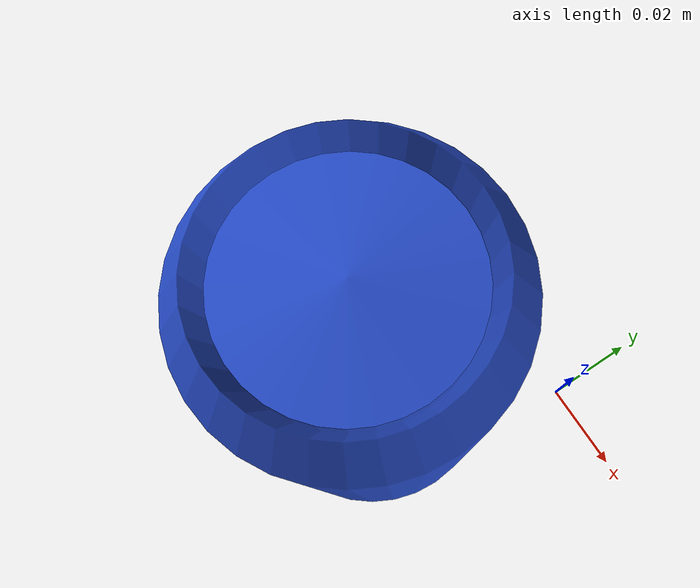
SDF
<?xml version="1.0" ?>
<sdf version='1.4'>
  <model name="coke">
      <static>0</static>
      <link name='link'>
        <inertial>
          <mass>0.25</mass>
          <inertia>
            <ixx>0.001</ixx>
            <ixy>0.000000</ixy>
            <ixz>0.000000</ixz>
            <iyy>0.001</iyy>
            <iyz>0.000000</iyz>
            <izz>0.001</izz>
          </inertia>
        </inertial>
        <collision name='collision'>
          <pose>-0.033 -0.033 -0.06 0 0 0</pose>
          <geometry>
            <mesh>
              <uri>model://coke/coke.stl</uri>
            </mesh>
          </geometry>
          <surface>
            <friction>
              <ode>
                <mu>30.0</mu>
                <mu2>30.0</mu2>
              </ode>
            </friction>
            <contact>
              <ode>
                <kp>1000000.0</kp>
                <kd>100.0</kd>
                <max_vel>1.0</max_vel>
                <min_depth>0.002</min_depth>
              </ode>
            </contact>
          </surface>
        </collision>
        <visual name='visual'>
          <pose>-0.033 -0.033 -0.06 0 0 0</pose>
          <geometry>
            <mesh>
              <uri>model://coke/coke.stl</uri>
            </mesh>
          </geometry>
          <material>
            <script>
              <uri>file://media/materials/scripts/gazebo.material</uri>
              <name>Gazebo/Blue</name>
            </script>
          </material>
        </visual>
        <velocity_decay>
          <linear>0.000000</linear>
          <angular>0.000000</angular>
        </velocity_decay>
        <self_collide>0</self_collide>
        <kinematic>0</kinematic>
        <gravity>1</gravity>
      </link>
  </model>
</sdf>
